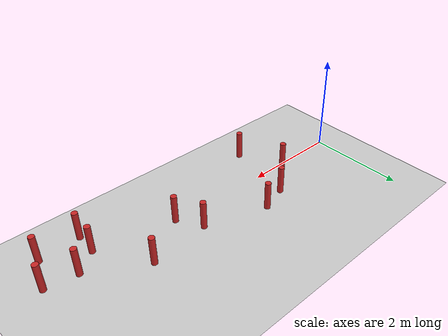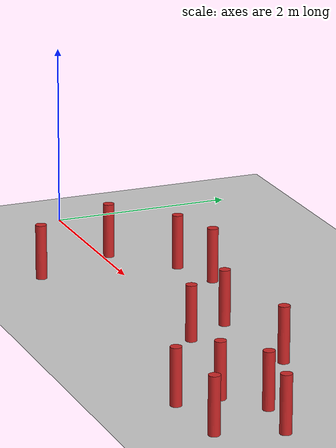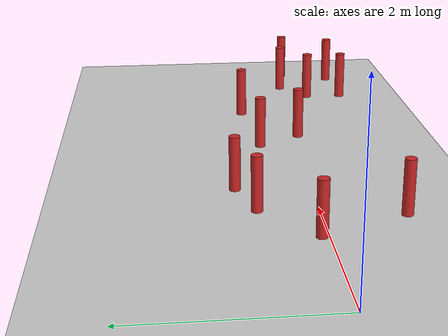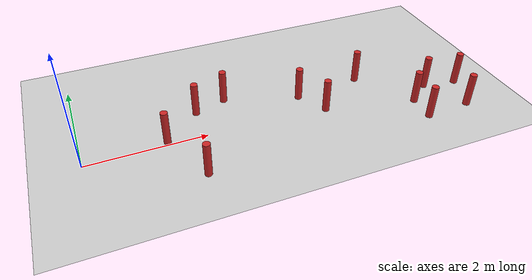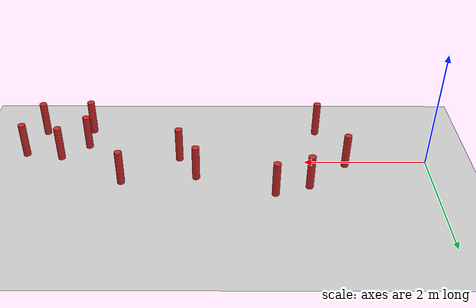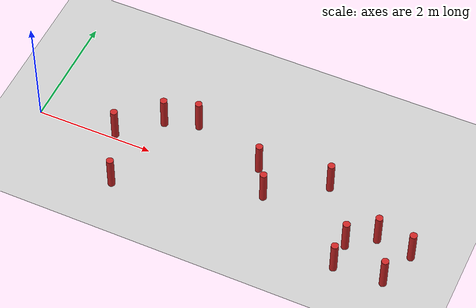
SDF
<?xml version="1.0" ?>
<!-- 由 omni_world.py 自动生成: scene=pillars seed=1 -->
<sdf version="1.5">
  <world name="pillars">
    <physics type="ode">
      <type>world</type>
      <max_step_size>0.001</max_step_size>
      <real_time_update_rate>1000</real_time_update_rate>
      <iters>500</iters>
    </physics>
    <include><uri>model://sun</uri></include>
    <include><uri>model://ground_plane</uri></include>
    <model name="pole_0">
      <static>true</static>
      <pose>1.979 0.625 0.300 0 0 0</pose>
      <link name="link">
        <collision name="collision">
          <geometry><cylinder><radius>0.060</radius><length>0.600</length></cylinder></geometry>
          <surface><friction><ode><mu>1.0</mu><mu2>1.0</mu2></ode></friction></surface>
        </collision>
        <visual name="visual">
          <geometry><cylinder><radius>0.060</radius><length>0.600</length></cylinder></geometry>
          <material><script><uri>file://media/materials/scripts/gazebo.material</uri>
            <name>Gazebo/Red</name></script></material>
        </visual>
      </link>
    </model>
    <model name="pole_1">
      <static>true</static>
      <pose>5.630 -0.441 0.300 0 0 0</pose>
      <link name="link">
        <collision name="collision">
          <geometry><cylinder><radius>0.060</radius><length>0.600</length></cylinder></geometry>
          <surface><friction><ode><mu>1.0</mu><mu2>1.0</mu2></ode></friction></surface>
        </collision>
        <visual name="visual">
          <geometry><cylinder><radius>0.060</radius><length>0.600</length></cylinder></geometry>
          <material><script><uri>file://media/materials/scripts/gazebo.material</uri>
            <name>Gazebo/Red</name></script></material>
        </visual>
      </link>
    </model>
    <model name="pole_2">
      <static>true</static>
      <pose>4.074 -0.091 0.300 0 0 0</pose>
      <link name="link">
        <collision name="collision">
          <geometry><cylinder><radius>0.060</radius><length>0.600</length></cylinder></geometry>
          <surface><friction><ode><mu>1.0</mu><mu2>1.0</mu2></ode></friction></surface>
        </collision>
        <visual name="visual">
          <geometry><cylinder><radius>0.060</radius><length>0.600</length></cylinder></geometry>
          <material><script><uri>file://media/materials/scripts/gazebo.material</uri>
            <name>Gazebo/Red</name></script></material>
        </visual>
      </link>
    </model>
    <model name="pole_3">
      <static>true</static>
      <pose>4.979 0.520 0.300 0 0 0</pose>
      <link name="link">
        <collision name="collision">
          <geometry><cylinder><radius>0.060</radius><length>0.600</length></cylinder></geometry>
          <surface><friction><ode><mu>1.0</mu><mu2>1.0</mu2></ode></friction></surface>
        </collision>
        <visual name="visual">
          <geometry><cylinder><radius>0.060</radius><length>0.600</length></cylinder></geometry>
          <material><script><uri>file://media/materials/scripts/gazebo.material</uri>
            <name>Gazebo/Red</name></script></material>
        </visual>
      </link>
    </model>
    <model name="pole_4">
      <static>true</static>
      <pose>1.744 -0.849 0.300 0 0 0</pose>
      <link name="link">
        <collision name="collision">
          <geometry><cylinder><radius>0.060</radius><length>0.600</length></cylinder></geometry>
          <surface><friction><ode><mu>1.0</mu><mu2>1.0</mu2></ode></friction></surface>
        </collision>
        <visual name="visual">
          <geometry><cylinder><radius>0.060</radius><length>0.600</length></cylinder></geometry>
          <material><script><uri>file://media/materials/scripts/gazebo.material</uri>
            <name>Gazebo/Red</name></script></material>
        </visual>
      </link>
    </model>
    <model name="pole_5">
      <static>true</static>
      <pose>6.047 -0.121 0.300 0 0 0</pose>
      <link name="link">
        <collision name="collision">
          <geometry><cylinder><radius>0.060</radius><length>0.600</length></cylinder></geometry>
          <surface><friction><ode><mu>1.0</mu><mu2>1.0</mu2></ode></friction></surface>
        </collision>
        <visual name="visual">
          <geometry><cylinder><radius>0.060</radius><length>0.600</length></cylinder></geometry>
          <material><script><uri>file://media/materials/scripts/gazebo.material</uri>
            <name>Gazebo/Red</name></script></material>
        </visual>
      </link>
    </model>
    <model name="pole_6">
      <static>true</static>
      <pose>5.621 -0.896 0.300 0 0 0</pose>
      <link name="link">
        <collision name="collision">
          <geometry><cylinder><radius>0.060</radius><length>0.600</length></cylinder></geometry>
          <surface><friction><ode><mu>1.0</mu><mu2>1.0</mu2></ode></friction></surface>
        </collision>
        <visual name="visual">
          <geometry><cylinder><radius>0.060</radius><length>0.600</length></cylinder></geometry>
          <material><script><uri>file://media/materials/scripts/gazebo.material</uri>
            <name>Gazebo/Red</name></script></material>
        </visual>
      </link>
    </model>
    <model name="pole_7">
      <static>true</static>
      <pose>3.783 0.399 0.300 0 0 0</pose>
      <link name="link">
        <collision name="collision">
          <geometry><cylinder><radius>0.060</radius><length>0.600</length></cylinder></geometry>
          <surface><friction><ode><mu>1.0</mu><mu2>1.0</mu2></ode></friction></surface>
        </collision>
        <visual name="visual">
          <geometry><cylinder><radius>0.060</radius><length>0.600</length></cylinder></geometry>
          <material><script><uri>file://media/materials/scripts/gazebo.material</uri>
            <name>Gazebo/Red</name></script></material>
        </visual>
      </link>
    </model>
    <model name="pole_8">
      <static>true</static>
      <pose>2.527 0.801 0.300 0 0 0</pose>
      <link name="link">
        <collision name="collision">
          <geometry><cylinder><radius>0.060</radius><length>0.600</length></cylinder></geometry>
          <surface><friction><ode><mu>1.0</mu><mu2>1.0</mu2></ode></friction></surface>
        </collision>
        <visual name="visual">
          <geometry><cylinder><radius>0.060</radius><length>0.600</length></cylinder></geometry>
          <material><script><uri>file://media/materials/scripts/gazebo.material</uri>
            <name>Gazebo/Red</name></script></material>
        </visual>
      </link>
    </model>
    <model name="pole_9">
      <static>true</static>
      <pose>6.428 -0.845 0.300 0 0 0</pose>
      <link name="link">
        <collision name="collision">
          <geometry><cylinder><radius>0.060</radius><length>0.600</length></cylinder></geometry>
          <surface><friction><ode><mu>1.0</mu><mu2>1.0</mu2></ode></friction></surface>
        </collision>
        <visual name="visual">
          <geometry><cylinder><radius>0.060</radius><length>0.600</length></cylinder></geometry>
          <material><script><uri>file://media/materials/scripts/gazebo.material</uri>
            <name>Gazebo/Red</name></script></material>
        </visual>
      </link>
    </model>
    <model name="pole_10">
      <static>true</static>
      <pose>1.348 0.075 0.300 0 0 0</pose>
      <link name="link">
        <collision name="collision">
          <geometry><cylinder><radius>0.060</radius><length>0.600</length></cylinder></geometry>
          <surface><friction><ode><mu>1.0</mu><mu2>1.0</mu2></ode></friction></surface>
        </collision>
        <visual name="visual">
          <geometry><cylinder><radius>0.060</radius><length>0.600</length></cylinder></geometry>
          <material><script><uri>file://media/materials/scripts/gazebo.material</uri>
            <name>Gazebo/Red</name></script></material>
        </visual>
      </link>
    </model>
    <model name="pole_11">
      <static>true</static>
      <pose>6.647 -0.214 0.300 0 0 0</pose>
      <link name="link">
        <collision name="collision">
          <geometry><cylinder><radius>0.060</radius><length>0.600</length></cylinder></geometry>
          <surface><friction><ode><mu>1.0</mu><mu2>1.0</mu2></ode></friction></surface>
        </collision>
        <visual name="visual">
          <geometry><cylinder><radius>0.060</radius><length>0.600</length></cylinder></geometry>
          <material><script><uri>file://media/materials/scripts/gazebo.material</uri>
            <name>Gazebo/Red</name></script></material>
        </visual>
      </link>
    </model>

  </world>
</sdf>
